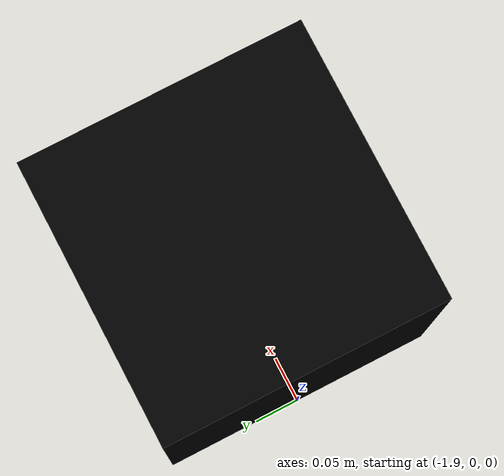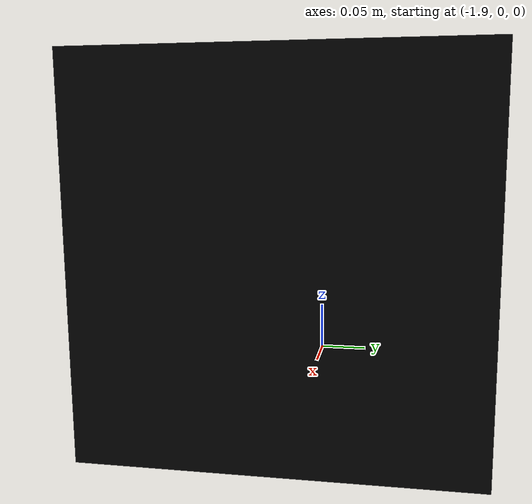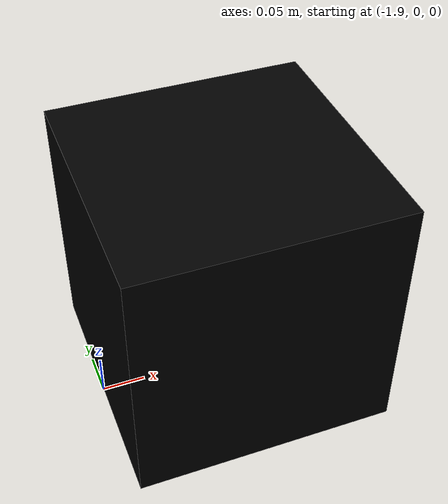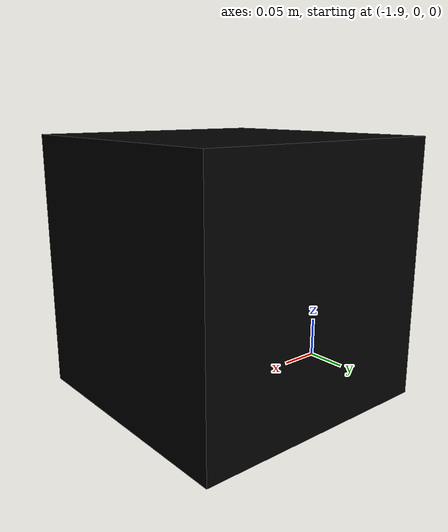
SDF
<?xml version='1.0'?>
<sdf version='1.4'>
  <model name="AruCo_Block_5">
    <static>true</static>
    <link name='chassis'>
            <pose>-1.75 0 0.15 0 0 0</pose>

            <collision name='collision'>
              <geometry>
                <box>
                  <size>.3 .3 .3</size>
                </box>
              </geometry>
            </collision>

            <visual name='visual_5'>
              <geometry>
                <box>
                  <size>.3 .3 .3</size>
                </box>
              </geometry>
              <material>
                <script>
                <uri>model://AruCo_Block_5/materials/scripts</uri>
                <uri>model://AruCo_Block_5/materials/textures</uri>
                <name>block5</name>
                </script>
                <ambient>0 0 0 1</ambient>
                <diffuse>0 0 0 1</diffuse>
                <specular>0 0 0 0</specular>
                <emissive>1 1 1 1</emissive>
              </material>
            </visual>
          </link>
  </model>
</sdf>
